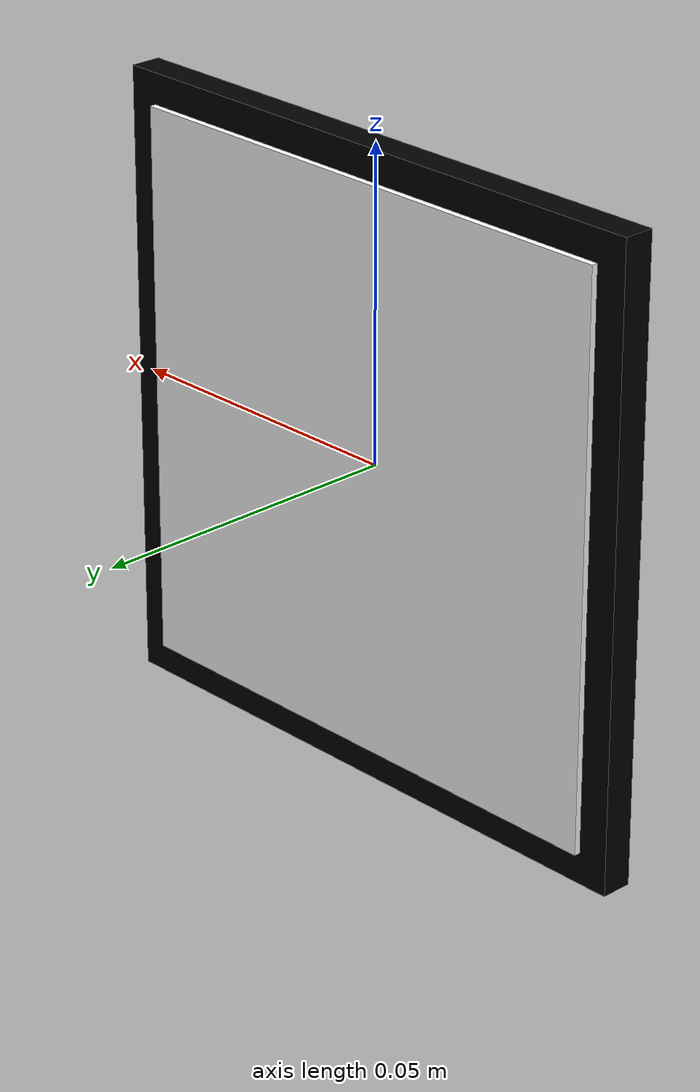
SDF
<?xml version="1.0" ?>
<sdf version="1.8">
  <model name="qr_marker_5">
    <static>true</static>
    <link name="link">
      <visual name="base">
        <geometry><box><size>0.1 0.005 0.1</size></box></geometry>
        <material><ambient>0 0 0 1</ambient><diffuse>0 0 0 1</diffuse></material>
      </visual>
      <visual name="pattern">
        <pose>0 0.003 0 0 0 0</pose>
        <geometry><box><size>0.09 0.001 0.09</size></box></geometry>
        <material>
          <diffuse>1 1 1 1</diffuse>
          <pbr>
            <metal>
              <albedo_map>textures/table_5.png</albedo_map>
            </metal>
          </pbr>
        </material>
      </visual>
    </link>
  </model>
</sdf>
